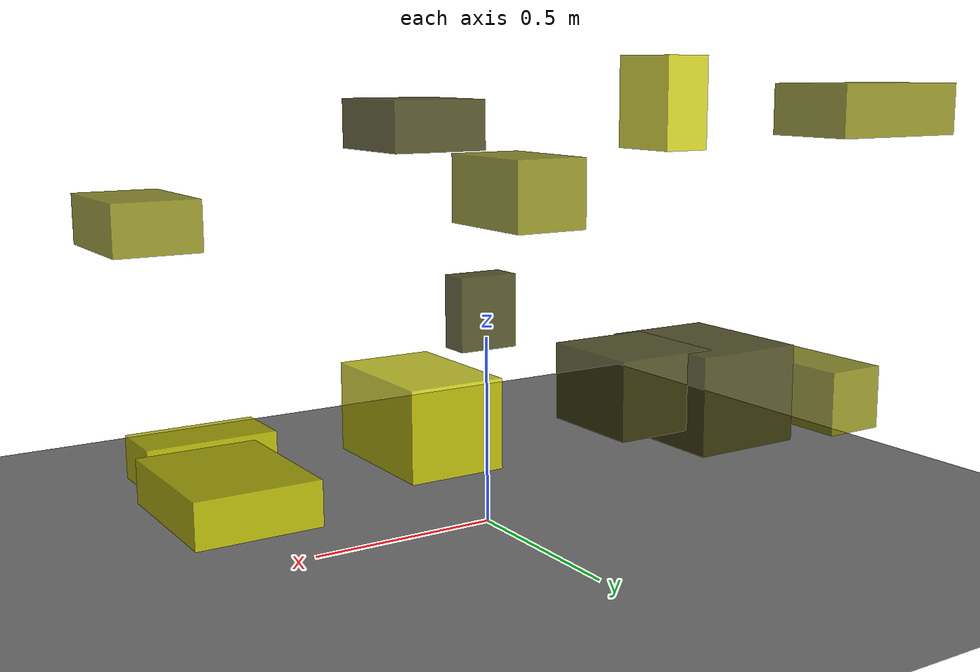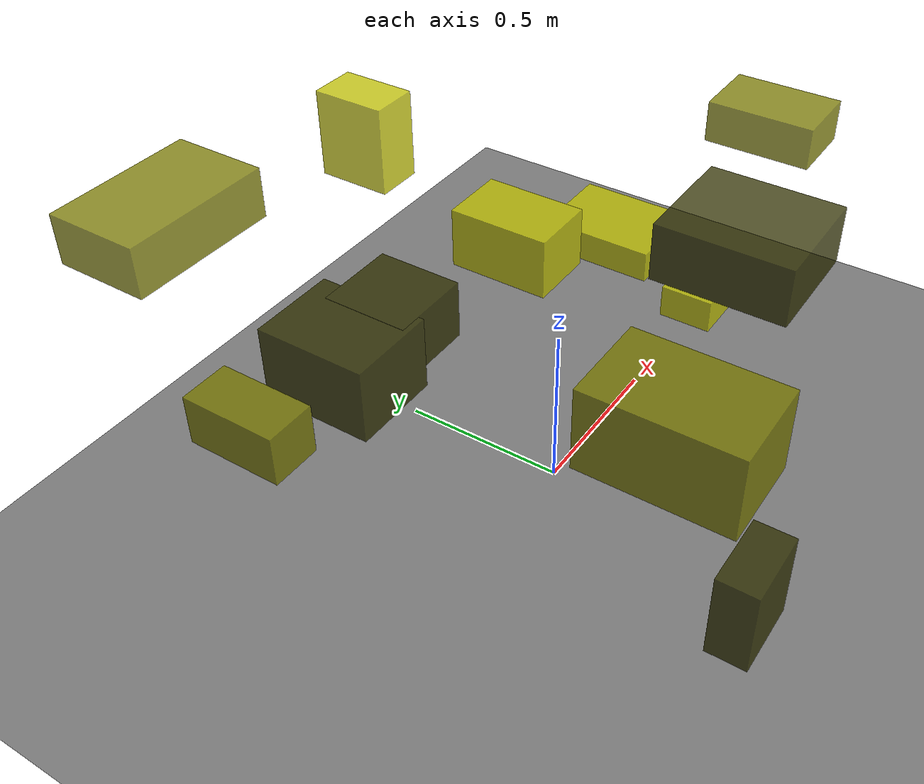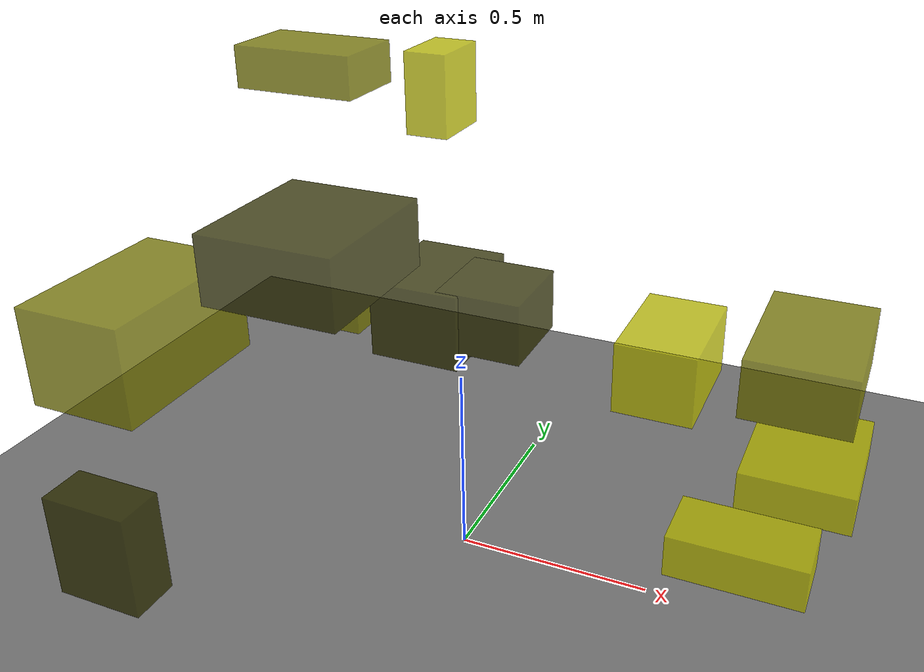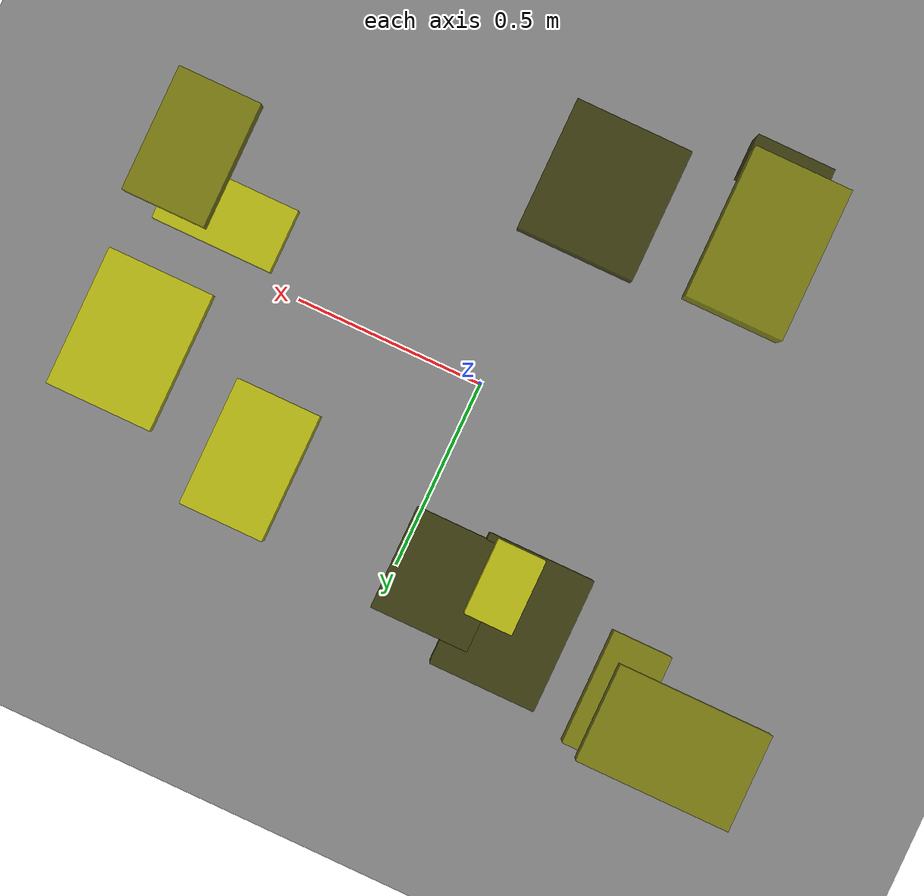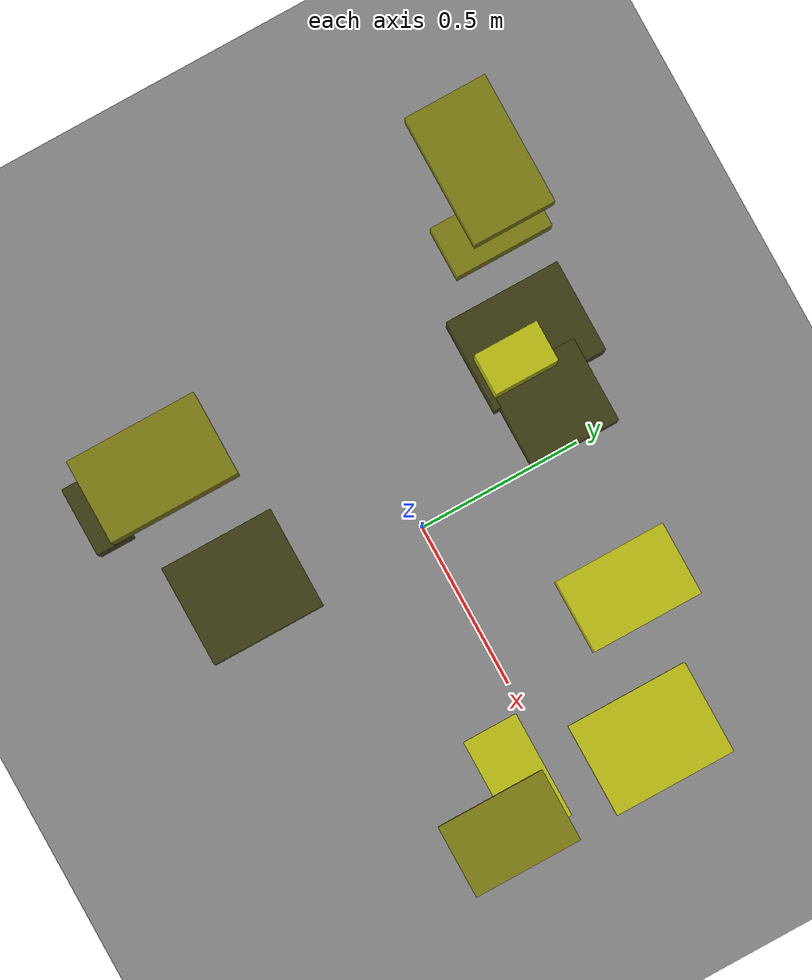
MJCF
<?xml version="1.0"?>
<mujoco model="obstacle_scene">
  <compiler angle="radian" coordinate="local"/>
  <option timestep="0.001" gravity="0 0 -9.81"/>

  <asset>
    <material name="obstacle_mat" rgba="0.8 0.8 0.0 0.8"/>
    <material name="ground_mat" rgba="0.5 0.5 0.5 1"/>
  </asset>

  <worldbody>
    <!-- Ground plane -->
    <geom name="ground" type="plane" size="3 3 0.1" material="ground_mat"/>

    <!-- Obstacles -->
    <body name="obstacle_0" pos="-0.066544 -0.505662 1.032065">
      <geom name="obs_0" type="box" size="0.144156 0.162128 0.072068" rgba="0.2 0.2 0.0 0.8"/>
    </body>
    <body name="obstacle_1" pos="-0.744039 0.577411 1.092246">
      <geom name="obs_1" type="box" size="0.189965 0.119579 0.063068" rgba="0.5 0.5 0.0 0.8"/>
    </body>
    <body name="obstacle_2" pos="0.821700 0.265960 0.298707">
      <geom name="obs_2" type="box" size="0.139389 0.182776 0.051018" rgba="0.8 0.8 0.0 0.8"/>
    </body>
    <body name="obstacle_3" pos="-0.113364 0.469114 0.454507">
      <geom name="obs_3" type="box" size="0.127422 0.132413 0.092269" rgba="0.2 0.2 0.0 0.8"/>
    </body>
    <body name="obstacle_4" pos="0.842855 -0.204238 0.835688">
      <geom name="obs_4" type="box" size="0.105009 0.157928 0.061752" rgba="0.5 0.5 0.0 0.8"/>
    </body>
    <body name="obstacle_5" pos="0.741013 -0.109164 0.277140">
      <geom name="obs_5" type="box" size="0.158781 0.082466 0.052500" rgba="0.8 0.8 0.0 0.8"/>
    </body>
    <body name="obstacle_6" pos="-0.450925 -0.766545 0.409836">
      <geom name="obs_6" type="box" size="0.101285 0.053095 0.120506" rgba="0.2 0.2 0.0 0.8"/>
    </body>
    <body name="obstacle_7" pos="-0.620411 0.556476 0.393289">
      <geom name="obs_7" type="box" size="0.076633 0.148348 0.077563" rgba="0.5 0.5 0.0 0.8"/>
    </body>
    <body name="obstacle_8" pos="0.425534 0.405025 0.443949">
      <geom name="obs_8" type="box" size="0.109224 0.165256 0.099525" rgba="0.8 0.8 0.0 0.8"/>
    </body>
    <body name="obstacle_9" pos="-0.308718 0.491784 0.428831">
      <geom name="obs_9" type="box" size="0.137368 0.171922 0.116081" rgba="0.2 0.2 0.0 0.8"/>
    </body>
    <body name="obstacle_10" pos="-0.464935 -0.565761 0.815602">
      <geom name="obs_10" type="box" size="0.123086 0.192090 0.109480" rgba="0.5 0.5 0.0 0.8"/>
    </body>
    <body name="obstacle_11" pos="-0.241353 0.407932 1.112608">
      <geom name="obs_11" type="box" size="0.058770 0.092186 0.110084" rgba="0.8 0.8 0.0 0.8"/>
    </body>
  </worldbody>
</mujoco>
